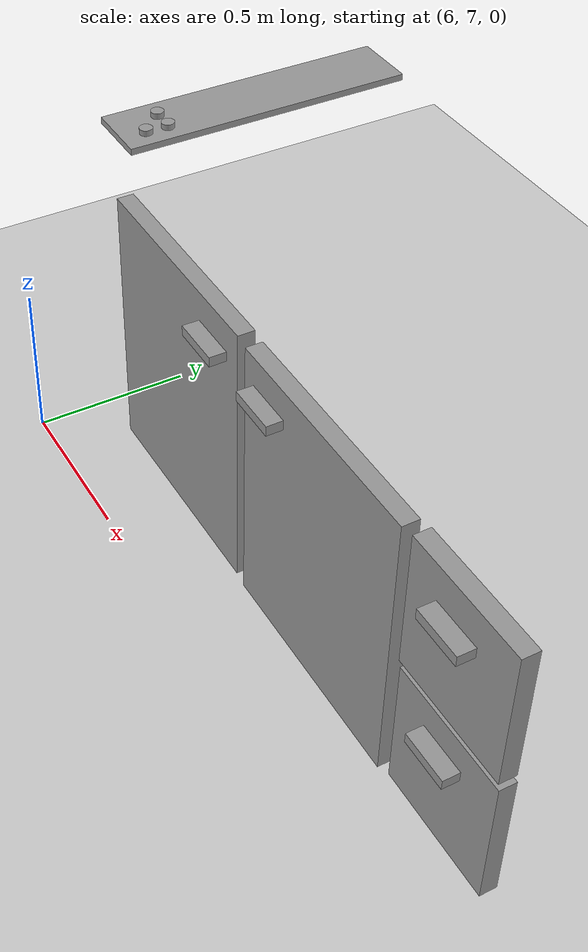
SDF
<sdf version="1.6">
 <world name="default">
  <model name="ground_plane">
   <static>1</static>
   <link name="link">
    <collision name="collision">
     <geometry><plane><normal>0 0 1</normal><size>100 100</size></plane></geometry>
     <surface>
      <contact><collide_bitmask>65535</collide_bitmask></contact>
      <friction><ode><mu>100</mu><mu2>50</mu2></ode></friction>
     </surface>
    </collision>
    <visual name="visual">
     <cast_shadows>0</cast_shadows>
     <geometry><plane><normal>0 0 1</normal><size>100 100</size></plane></geometry>
     <material>
      <script><uri>file://media/materials/scripts/gazebo.material</uri><name>Gazebo/Grey</name></script>
     </material>
    </visual>
   </link>
  </model>
  <model name="my_kitchen">
   <link name="link_0_0_clone_clone_clone_clone">
    <inertial>
     <mass>1</mass>
     <inertia><ixx>0.145833</ixx><ixy>0</ixy><ixz>0</ixz><iyy>0.145833</iyy><iyz>0</iyz><izz>0.125</izz></inertia>
    </inertial>
    <pose>1.86316 -0.307981 1.03286 0 -0 0</pose>
    <visual name="visual">
     <geometry><cylinder><radius>0.02</radius><length>0.03</length></cylinder></geometry>
     <material>
      <lighting>1</lighting>
      <script><uri>file://media/materials/scripts/gazebo.material</uri><name>Gazebo/Grey</name></script>
      <shader type="pixel"><normal_map>__default__</normal_map></shader>
      <ambient>0.6 0.6 0.6 1</ambient>
      <diffuse>0.6 0.6 0.6 1</diffuse>
      <specular>0.01 0.01 0.01 1</specular>
      <emissive>0 0 0 1</emissive>
     </material>
    </visual>
    <collision name="collision">
     <geometry><cylinder><radius>0.02</radius><length>0.03</length></cylinder></geometry>
     <surface>
      <friction>
       <ode><mu>1</mu><mu2>1</mu2><fdir1>0 0 0</fdir1><slip1>0</slip1><slip2>0</slip2></ode>
       <torsional>
        <coefficient>1</coefficient>
        <patch_radius>0</patch_radius>
        <surface_radius>0</surface_radius>
        <use_patch_radius>1</use_patch_radius>
        <ode><slip>0</slip></ode>
       </torsional>
      </friction>
      <bounce><restitution_coefficient>0</restitution_coefficient><threshold>1e+06</threshold></bounce>
      <contact>
       <collide_without_contact>0</collide_without_contact>
       <collide_without_contact_bitmask>1</collide_without_contact_bitmask>
       <collide_bitmask>1</collide_bitmask>
       <ode>
        <soft_cfm>0</soft_cfm>
        <soft_erp>0.2</soft_erp>
        <kp>1e+13</kp>
        <kd>1</kd>
        <max_vel>0.01</max_vel>
        <min_depth>0</min_depth>
       </ode>
       <bullet>
        <split_impulse>1</split_impulse>
        <split_impulse_penetration_threshold>-0.01</split_impulse_penetration_threshold>
        <soft_cfm>0</soft_cfm>
        <soft_erp>0.2</soft_erp>
        <kp>1e+13</kp>
        <kd>1</kd>
       </bullet>
      </contact>
     </surface>
    </collision>
   </link>
   <link name="link_0_0_clone_clone_clone_clone_clone">
    <inertial>
     <mass>1</mass>
     <inertia><ixx>0.145833</ixx><ixy>0</ixy><ixz>0</ixz><iyy>0.145833</iyy><iyz>0</iyz><izz>0.125</izz></inertia>
    </inertial>
    <pose>1.93281 -0.308649 1.03286 0 -0 0</pose>
    <visual name="visual">
     <geometry><cylinder><radius>0.02</radius><length>0.03</length></cylinder></geometry>
     <material>
      <lighting>1</lighting>
      <script><uri>file://media/materials/scripts/gazebo.material</uri><name>Gazebo/Grey</name></script>
      <shader type="pixel"><normal_map>__default__</normal_map></shader>
      <ambient>0.6 0.6 0.6 1</ambient>
      <diffuse>0.6 0.6 0.6 1</diffuse>
      <specular>0.01 0.01 0.01 1</specular>
      <emissive>0 0 0 1</emissive>
     </material>
    </visual>
    <collision name="collision">
     <geometry><cylinder><radius>0.02</radius><length>0.03</length></cylinder></geometry>
     <surface>
      <friction>
       <ode><mu>1</mu><mu2>1</mu2><fdir1>0 0 0</fdir1><slip1>0</slip1><slip2>0</slip2></ode>
       <torsional>
        <coefficient>1</coefficient>
        <patch_radius>0</patch_radius>
        <surface_radius>0</surface_radius>
        <use_patch_radius>1</use_patch_radius>
        <ode><slip>0</slip></ode>
       </torsional>
      </friction>
      <bounce><restitution_coefficient>0</restitution_coefficient><threshold>1e+06</threshold></bounce>
      <contact>
       <collide_without_contact>0</collide_without_contact>
       <collide_without_contact_bitmask>1</collide_without_contact_bitmask>
       <collide_bitmask>1</collide_bitmask>
       <ode>
        <soft_cfm>0</soft_cfm>
        <soft_erp>0.2</soft_erp>
        <kp>1e+13</kp>
        <kd>1</kd>
        <max_vel>0.01</max_vel>
        <min_depth>0</min_depth>
       </ode>
       <bullet>
        <split_impulse>1</split_impulse>
        <split_impulse_penetration_threshold>-0.01</split_impulse_penetration_threshold>
        <soft_cfm>0</soft_cfm>
        <soft_erp>0.2</soft_erp>
        <kp>1e+13</kp>
        <kd>1</kd>
       </bullet>
      </contact>
     </surface>
    </collision>
   </link>
   <link name="link_0_0_clone_clone_clone_clone_clone_clone_clone">
    <inertial>
     <mass>1</mass>
     <inertia><ixx>0.145833</ixx><ixy>0</ixy><ixz>0</ixz><iyy>0.145833</iyy><iyz>0</iyz><izz>0.125</izz></inertia>
    </inertial>
    <pose>1.93241 -0.377735 1.03286 0 -0 0</pose>
    <visual name="visual">
     <geometry><cylinder><radius>0.02</radius><length>0.03</length></cylinder></geometry>
     <material>
      <lighting>1</lighting>
      <script><uri>file://media/materials/scripts/gazebo.material</uri><name>Gazebo/Grey</name></script>
      <shader type="pixel"><normal_map>__default__</normal_map></shader>
      <ambient>0.6 0.6 0.6 1</ambient>
      <diffuse>0.6 0.6 0.6 1</diffuse>
      <specular>0.01 0.01 0.01 1</specular>
      <emissive>0 0 0 1</emissive>
     </material>
    </visual>
    <collision name="collision">
     <geometry><cylinder><radius>0.02</radius><length>0.03</length></cylinder></geometry>
     <surface>
      <friction>
       <ode><mu>1</mu><mu2>1</mu2><fdir1>0 0 0</fdir1><slip1>0</slip1><slip2>0</slip2></ode>
       <torsional>
        <coefficient>1</coefficient>
        <patch_radius>0</patch_radius>
        <surface_radius>0</surface_radius>
        <use_patch_radius>1</use_patch_radius>
        <ode><slip>0</slip></ode>
       </torsional>
      </friction>
      <bounce><restitution_coefficient>0</restitution_coefficient><threshold>1e+06</threshold></bounce>
      <contact>
       <collide_without_contact>0</collide_without_contact>
       <collide_without_contact_bitmask>1</collide_without_contact_bitmask>
       <collide_bitmask>1</collide_bitmask>
       <ode>
        <soft_cfm>0</soft_cfm>
        <soft_erp>0.2</soft_erp>
        <kp>1e+13</kp>
        <kd>1</kd>
        <max_vel>0.01</max_vel>
        <min_depth>0</min_depth>
       </ode>
       <bullet>
        <split_impulse>1</split_impulse>
        <split_impulse_penetration_threshold>-0.01</split_impulse_penetration_threshold>
        <soft_cfm>0</soft_cfm>
        <soft_erp>0.2</soft_erp>
        <kp>1e+13</kp>
        <kd>1</kd>
       </bullet>
      </contact>
     </surface>
    </collision>
   </link>
   <link name="link_clone_0_clone">
    <inertial>
     <mass>1</mass>
     <inertia>
      <ixx>0.166667</ixx>
      <ixy>0</ixy>
      <ixz>0</ixz>
      <iyy>0.166667</iyy>
      <iyz>0</iyz>
      <izz>0.166667</izz>
     </inertia>
    </inertial>
    <pose>1.89193 -0.003715 0.520133 0 -0 0</pose>
    <gravity>0</gravity>
    <visual name="visual">
     <geometry><box><size>0.2 0.9 0.02</size></box></geometry>
     <material>
      <script><name>Gazebo/Grey</name><uri>file://media/materials/scripts/gazebo.material</uri></script>
      <shader type="pixel"><normal_map>__default__</normal_map></shader>
      <ambient>0.4 0.4 0.4 1</ambient>
      <diffuse>0.4 0.4 0.4 1</diffuse>
      <specular>0.01 0.01 0.01 1</specular>
      <emissive>0 0 0 1</emissive>
     </material>
     <pose>0 0 0.5 0 -0 0</pose>
    </visual>
    <collision name="collision">
     <pose>0 0 0.5 0 -0 0</pose>
     <geometry><box><size>0.2 0.9 0.02</size></box></geometry>
     <surface>
      <friction>
       <ode><mu>1</mu><mu2>1</mu2><fdir1>0 0 0</fdir1><slip1>0</slip1><slip2>0</slip2></ode>
       <torsional>
        <coefficient>1</coefficient>
        <patch_radius>0</patch_radius>
        <surface_radius>0</surface_radius>
        <use_patch_radius>1</use_patch_radius>
        <ode><slip>0</slip></ode>
       </torsional>
      </friction>
      <bounce><restitution_coefficient>0</restitution_coefficient><threshold>1e+06</threshold></bounce>
      <contact>
       <collide_without_contact>0</collide_without_contact>
       <collide_without_contact_bitmask>1</collide_without_contact_bitmask>
       <collide_bitmask>1</collide_bitmask>
       <ode>
        <soft_cfm>0</soft_cfm>
        <soft_erp>0.2</soft_erp>
        <kp>1e+13</kp>
        <kd>1</kd>
        <max_vel>0.01</max_vel>
        <min_depth>0</min_depth>
       </ode>
       <bullet>
        <split_impulse>1</split_impulse>
        <split_impulse_penetration_threshold>-0.01</split_impulse_penetration_threshold>
        <soft_cfm>0</soft_cfm>
        <soft_erp>0.2</soft_erp>
        <kp>1e+13</kp>
        <kd>1</kd>
       </bullet>
      </contact>
     </surface>
    </collision>
   </link>
   <link name="link_clone_clone_clone_0_clone_clone_clone_0_clone_clone">
    <inertial>
     <mass>1</mass>
     <inertia>
      <ixx>0.166667</ixx>
      <ixy>0</ixy>
      <ixz>0</ixz>
      <iyy>0.166667</iyy>
      <iyz>0</iyz>
      <izz>0.166667</izz>
     </inertia>
    </inertial>
    <pose>3.17153 -0.519787 0.016041 0 -0 0</pose>
    <gravity>0</gravity>
    <visual name="visual">
     <geometry><box><size>0.05 0.7 0.85</size></box></geometry>
     <material>
      <script><name>Gazebo/Grey</name><uri>file://media/materials/scripts/gazebo.material</uri></script>
      <shader type="pixel"><normal_map>__default__</normal_map></shader>
      <ambient>0.4 0.4 0.4 1</ambient>
      <diffuse>0.4 0.4 0.4 1</diffuse>
      <specular>0.01 0.01 0.01 1</specular>
      <emissive>0 0 0 1</emissive>
     </material>
     <pose>0 0 0.5 0 -0 1.5707</pose>
    </visual>
    <collision name="collision">
     <pose>0 0 0.5 0 -0 1.5707</pose>
     <geometry><box><size>0.05 0.7 0.85</size></box></geometry>
     <surface>
      <friction>
       <ode><mu>1</mu><mu2>1</mu2><fdir1>0 0 0</fdir1><slip1>0</slip1><slip2>0</slip2></ode>
       <torsional>
        <coefficient>1</coefficient>
        <patch_radius>0</patch_radius>
        <surface_radius>0</surface_radius>
        <use_patch_radius>1</use_patch_radius>
        <ode><slip>0</slip></ode>
       </torsional>
      </friction>
      <bounce><restitution_coefficient>0</restitution_coefficient><threshold>1e+06</threshold></bounce>
      <contact>
       <collide_without_contact>0</collide_without_contact>
       <collide_without_contact_bitmask>1</collide_without_contact_bitmask>
       <collide_bitmask>1</collide_bitmask>
       <ode>
        <soft_cfm>0</soft_cfm>
        <soft_erp>0.2</soft_erp>
        <kp>1e+13</kp>
        <kd>1</kd>
        <max_vel>0.01</max_vel>
        <min_depth>0</min_depth>
       </ode>
       <bullet>
        <split_impulse>1</split_impulse>
        <split_impulse_penetration_threshold>-0.01</split_impulse_penetration_threshold>
        <soft_cfm>0</soft_cfm>
        <soft_erp>0.2</soft_erp>
        <kp>1e+13</kp>
        <kd>1</kd>
       </bullet>
      </contact>
     </surface>
    </collision>
   </link>
   <link name="link_clone_clone_clone_0_clone_clone_clone_0_clone_clone_clone">
    <inertial>
     <mass>1</mass>
     <inertia>
      <ixx>0.166667</ixx>
      <ixy>0</ixy>
      <ixz>0</ixz>
      <iyy>0.166667</iyy>
      <iyz>0</iyz>
      <izz>0.166667</izz>
     </inertia>
    </inertial>
    <pose>2.42242 -0.51406 0.016041 0 -0 0</pose>
    <gravity>0</gravity>
    <visual name="visual">
     <geometry><box><size>0.05 0.7 0.85</size></box></geometry>
     <material>
      <script><name>Gazebo/Grey</name><uri>file://media/materials/scripts/gazebo.material</uri></script>
      <shader type="pixel"><normal_map>__default__</normal_map></shader>
      <ambient>0.4 0.4 0.4 1</ambient>
      <diffuse>0.4 0.4 0.4 1</diffuse>
      <specular>0.01 0.01 0.01 1</specular>
      <emissive>0 0 0 1</emissive>
     </material>
     <pose>0 0 0.5 0 -0 1.5707</pose>
    </visual>
    <collision name="collision">
     <pose>0 0 0.5 0 -0 1.5707</pose>
     <geometry><box><size>0.05 0.7 0.85</size></box></geometry>
     <surface>
      <friction>
       <ode><mu>1</mu><mu2>1</mu2><fdir1>0 0 0</fdir1><slip1>0</slip1><slip2>0</slip2></ode>
       <torsional>
        <coefficient>1</coefficient>
        <patch_radius>0</patch_radius>
        <surface_radius>0</surface_radius>
        <use_patch_radius>1</use_patch_radius>
        <ode><slip>0</slip></ode>
       </torsional>
      </friction>
      <bounce><restitution_coefficient>0</restitution_coefficient><threshold>1e+06</threshold></bounce>
      <contact>
       <collide_without_contact>0</collide_without_contact>
       <collide_without_contact_bitmask>1</collide_without_contact_bitmask>
       <collide_bitmask>1</collide_bitmask>
       <ode>
        <soft_cfm>0</soft_cfm>
        <soft_erp>0.2</soft_erp>
        <kp>1e+13</kp>
        <kd>1</kd>
        <max_vel>0.01</max_vel>
        <min_depth>0</min_depth>
       </ode>
       <bullet>
        <split_impulse>1</split_impulse>
        <split_impulse_penetration_threshold>-0.01</split_impulse_penetration_threshold>
        <soft_cfm>0</soft_cfm>
        <soft_erp>0.2</soft_erp>
        <kp>1e+13</kp>
        <kd>1</kd>
       </bullet>
      </contact>
     </surface>
    </collision>
   </link>
   <link name="link_clone_clone_clone_0_clone_clone_clone_0_clone_clone_clone_0">
    <inertial>
     <mass>1</mass>
     <inertia>
      <ixx>0.166667</ixx>
      <ixy>0</ixy>
      <ixz>0</ixz>
      <iyy>0.166667</iyy>
      <iyz>0</iyz>
      <izz>0.166667</izz>
     </inertia>
    </inertial>
    <pose>3.74896 -0.513318 0.237061 0 -0 0</pose>
    <gravity>0</gravity>
    <visual name="visual">
     <geometry><box><size>0.05 0.39 0.41</size></box></geometry>
     <material>
      <script><name>Gazebo/Grey</name><uri>file://media/materials/scripts/gazebo.material</uri></script>
      <shader type="pixel"><normal_map>__default__</normal_map></shader>
      <ambient>0.4 0.4 0.4 1</ambient>
      <diffuse>0.4 0.4 0.4 1</diffuse>
      <specular>0.01 0.01 0.01 1</specular>
      <emissive>0 0 0 1</emissive>
     </material>
     <pose>0 0 0.5 0 -0 1.5707</pose>
    </visual>
    <collision name="collision">
     <pose>0 0 0.5 0 -0 1.5707</pose>
     <geometry><box><size>0.05 0.39 0.41</size></box></geometry>
     <surface>
      <friction>
       <ode><mu>1</mu><mu2>1</mu2><fdir1>0 0 0</fdir1><slip1>0</slip1><slip2>0</slip2></ode>
       <torsional>
        <coefficient>1</coefficient>
        <patch_radius>0</patch_radius>
        <surface_radius>0</surface_radius>
        <use_patch_radius>1</use_patch_radius>
        <ode><slip>0</slip></ode>
       </torsional>
      </friction>
      <bounce><restitution_coefficient>0</restitution_coefficient><threshold>1e+06</threshold></bounce>
      <contact>
       <collide_without_contact>0</collide_without_contact>
       <collide_without_contact_bitmask>1</collide_without_contact_bitmask>
       <collide_bitmask>1</collide_bitmask>
       <ode>
        <soft_cfm>0</soft_cfm>
        <soft_erp>0.2</soft_erp>
        <kp>1e+13</kp>
        <kd>1</kd>
        <max_vel>0.01</max_vel>
        <min_depth>0</min_depth>
       </ode>
       <bullet>
        <split_impulse>1</split_impulse>
        <split_impulse_penetration_threshold>-0.01</split_impulse_penetration_threshold>
        <soft_cfm>0</soft_cfm>
        <soft_erp>0.2</soft_erp>
        <kp>1e+13</kp>
        <kd>1</kd>
       </bullet>
      </contact>
     </surface>
    </collision>
   </link>
   <link name="link_clone_clone_clone_0_clone_clone_clone_0_clone_clone_clone_0_clone">
    <inertial>
     <mass>1</mass>
     <inertia>
      <ixx>0.166667</ixx>
      <ixy>0</ixy>
      <ixz>0</ixz>
      <iyy>0.166667</iyy>
      <iyz>0</iyz>
      <izz>0.166667</izz>
     </inertia>
    </inertial>
    <pose>3.74748 -0.506678 -0.203025 0 -0 0</pose>
    <visual name="visual">
     <geometry><box><size>0.05 0.39 0.41</size></box></geometry>
     <material>
      <script><name>Gazebo/Grey</name><uri>file://media/materials/scripts/gazebo.material</uri></script>
      <shader type="pixel"><normal_map>__default__</normal_map></shader>
      <ambient>0.4 0.4 0.4 1</ambient>
      <diffuse>0.4 0.4 0.4 1</diffuse>
      <specular>0.01 0.01 0.01 1</specular>
      <emissive>0 0 0 1</emissive>
     </material>
     <pose>0 0 0.5 0 -0 1.5707</pose>
    </visual>
    <collision name="collision">
     <pose>0 0 0.5 0 -0 1.5707</pose>
     <geometry><box><size>0.05 0.39 0.41</size></box></geometry>
     <surface>
      <friction>
       <ode><mu>1</mu><mu2>1</mu2><fdir1>0 0 0</fdir1><slip1>0</slip1><slip2>0</slip2></ode>
       <torsional>
        <coefficient>1</coefficient>
        <patch_radius>0</patch_radius>
        <surface_radius>0</surface_radius>
        <use_patch_radius>1</use_patch_radius>
        <ode><slip>0</slip></ode>
       </torsional>
      </friction>
      <bounce><restitution_coefficient>0</restitution_coefficient><threshold>1e+06</threshold></bounce>
      <contact>
       <collide_without_contact>0</collide_without_contact>
       <collide_without_contact_bitmask>1</collide_without_contact_bitmask>
       <collide_bitmask>1</collide_bitmask>
       <ode>
        <soft_cfm>0</soft_cfm>
        <soft_erp>0.2</soft_erp>
        <kp>1e+13</kp>
        <kd>1</kd>
        <max_vel>0.01</max_vel>
        <min_depth>0</min_depth>
       </ode>
       <bullet>
        <split_impulse>1</split_impulse>
        <split_impulse_penetration_threshold>-0.01</split_impulse_penetration_threshold>
        <soft_cfm>0</soft_cfm>
        <soft_erp>0.2</soft_erp>
        <kp>1e+13</kp>
        <kd>1</kd>
       </bullet>
      </contact>
     </surface>
    </collision>
   </link>
   <link name="link_clone_clone_clone_0_clone_clone_clone_clone_1">
    <inertial>
     <mass>1</mass>
     <inertia>
      <ixx>0.166667</ixx>
      <ixy>0</ixy>
      <ixz>0</ixz>
      <iyy>0.166667</iyy>
      <iyz>0</iyz>
      <izz>0.166667</izz>
     </inertia>
    </inertial>
    <pose>2.64241 -0.56602 0.338029 0 -0 0</pose>
    <gravity>0</gravity>
    <visual name="visual">
     <geometry><box><size>0.05 0.15 0.03</size></box></geometry>
     <material>
      <script><name>Gazebo/Grey</name><uri>file://media/materials/scripts/gazebo.material</uri></script>
      <shader type="pixel"><normal_map>__default__</normal_map></shader>
      <ambient>0.9 0.9 0.9 1</ambient>
      <diffuse>0.8 0.8 0.8 1</diffuse>
      <specular>0.01 0.01 0.01 1</specular>
      <emissive>0 0 0 1</emissive>
     </material>
     <pose>0 0 0.5 0 -0 1.5707</pose>
    </visual>
    <collision name="collision">
     <pose>0 0 0.5 0 -0 1.5707</pose>
     <geometry><box><size>0.05 0.15 0.03</size></box></geometry>
     <surface>
      <friction>
       <ode><mu>1</mu><mu2>1</mu2><fdir1>0 0 0</fdir1><slip1>0</slip1><slip2>0</slip2></ode>
       <torsional>
        <coefficient>1</coefficient>
        <patch_radius>0</patch_radius>
        <surface_radius>0</surface_radius>
        <use_patch_radius>1</use_patch_radius>
        <ode><slip>0</slip></ode>
       </torsional>
      </friction>
      <bounce><restitution_coefficient>0</restitution_coefficient><threshold>1e+06</threshold></bounce>
      <contact>
       <collide_without_contact>0</collide_without_contact>
       <collide_without_contact_bitmask>1</collide_without_contact_bitmask>
       <collide_bitmask>1</collide_bitmask>
       <ode>
        <soft_cfm>0</soft_cfm>
        <soft_erp>0.2</soft_erp>
        <kp>1e+13</kp>
        <kd>1</kd>
        <max_vel>0.01</max_vel>
        <min_depth>0</min_depth>
       </ode>
       <bullet>
        <split_impulse>1</split_impulse>
        <split_impulse_penetration_threshold>-0.01</split_impulse_penetration_threshold>
        <soft_cfm>0</soft_cfm>
        <soft_erp>0.2</soft_erp>
        <kp>1e+13</kp>
        <kd>1</kd>
       </bullet>
      </contact>
     </surface>
    </collision>
   </link>
   <link name="link_clone_clone_clone_0_clone_clone_clone_clone_1_clone">
    <inertial>
     <mass>1</mass>
     <inertia>
      <ixx>0.166667</ixx>
      <ixy>0</ixy>
      <ixz>0</ixz>
      <iyy>0.166667</iyy>
      <iyz>0</iyz>
      <izz>0.166667</izz>
     </inertia>
    </inertial>
    <pose>3.74642 -0.563139 -0.08913 0 -0 0</pose>
    <gravity>0</gravity>
    <visual name="visual">
     <geometry><box><size>0.05 0.15 0.03</size></box></geometry>
     <material>
      <script><name>Gazebo/Grey</name><uri>file://media/materials/scripts/gazebo.material</uri></script>
      <shader type="pixel"><normal_map>__default__</normal_map></shader>
      <ambient>0.9 0.9 0.9 1</ambient>
      <diffuse>0.8 0.8 0.8 1</diffuse>
      <specular>0.01 0.01 0.01 1</specular>
      <emissive>0 0 0 1</emissive>
     </material>
     <pose>0 0 0.5 0 -0 1.5707</pose>
    </visual>
    <collision name="collision">
     <pose>0 0 0.5 0 -0 1.5707</pose>
     <geometry><box><size>0.05 0.15 0.03</size></box></geometry>
     <surface>
      <friction>
       <ode><mu>1</mu><mu2>1</mu2><fdir1>0 0 0</fdir1><slip1>0</slip1><slip2>0</slip2></ode>
       <torsional>
        <coefficient>1</coefficient>
        <patch_radius>0</patch_radius>
        <surface_radius>0</surface_radius>
        <use_patch_radius>1</use_patch_radius>
        <ode><slip>0</slip></ode>
       </torsional>
      </friction>
      <bounce><restitution_coefficient>0</restitution_coefficient><threshold>1e+06</threshold></bounce>
      <contact>
       <collide_without_contact>0</collide_without_contact>
       <collide_without_contact_bitmask>1</collide_without_contact_bitmask>
       <collide_bitmask>1</collide_bitmask>
       <ode>
        <soft_cfm>0</soft_cfm>
        <soft_erp>0.2</soft_erp>
        <kp>1e+13</kp>
        <kd>1</kd>
        <max_vel>0.01</max_vel>
        <min_depth>0</min_depth>
       </ode>
       <bullet>
        <split_impulse>1</split_impulse>
        <split_impulse_penetration_threshold>-0.01</split_impulse_penetration_threshold>
        <soft_cfm>0</soft_cfm>
        <soft_erp>0.2</soft_erp>
        <kp>1e+13</kp>
        <kd>1</kd>
       </bullet>
      </contact>
     </surface>
    </collision>
   </link>
   <link name="link_clone_clone_clone_0_clone_clone_clone_clone_1_clone_clone">
    <inertial>
     <mass>1</mass>
     <inertia>
      <ixx>0.166667</ixx>
      <ixy>0</ixy>
      <ixz>0</ixz>
      <iyy>0.166667</iyy>
      <iyz>0</iyz>
      <izz>0.166667</izz>
     </inertia>
    </inertial>
    <pose>2.93965 -0.568069 0.338029 0 -0 0</pose>
    <gravity>0</gravity>
    <visual name="visual">
     <geometry><box><size>0.05 0.15 0.03</size></box></geometry>
     <material>
      <script><name>Gazebo/Grey</name><uri>file://media/materials/scripts/gazebo.material</uri></script>
      <shader type="pixel"><normal_map>__default__</normal_map></shader>
      <ambient>0.9 0.9 0.9 1</ambient>
      <diffuse>0.8 0.8 0.8 1</diffuse>
      <specular>0.01 0.01 0.01 1</specular>
      <emissive>0 0 0 1</emissive>
     </material>
     <pose>0 0 0.5 0 -0 1.5707</pose>
    </visual>
    <collision name="collision">
     <pose>0 0 0.5 0 -0 1.5707</pose>
     <geometry><box><size>0.05 0.15 0.03</size></box></geometry>
     <surface>
      <friction>
       <ode><mu>1</mu><mu2>1</mu2><fdir1>0 0 0</fdir1><slip1>0</slip1><slip2>0</slip2></ode>
       <torsional>
        <coefficient>1</coefficient>
        <patch_radius>0</patch_radius>
        <surface_radius>0</surface_radius>
        <use_patch_radius>1</use_patch_radius>
        <ode><slip>0</slip></ode>
       </torsional>
      </friction>
      <bounce><restitution_coefficient>0</restitution_coefficient><threshold>1e+06</threshold></bounce>
      <contact>
       <collide_without_contact>0</collide_without_contact>
       <collide_without_contact_bitmask>1</collide_without_contact_bitmask>
       <collide_bitmask>1</collide_bitmask>
       <ode>
        <soft_cfm>0</soft_cfm>
        <soft_erp>0.2</soft_erp>
        <kp>1e+13</kp>
        <kd>1</kd>
        <max_vel>0.01</max_vel>
        <min_depth>0</min_depth>
       </ode>
       <bullet>
        <split_impulse>1</split_impulse>
        <split_impulse_penetration_threshold>-0.01</split_impulse_penetration_threshold>
        <soft_cfm>0</soft_cfm>
        <soft_erp>0.2</soft_erp>
        <kp>1e+13</kp>
        <kd>1</kd>
       </bullet>
      </contact>
     </surface>
    </collision>
   </link>
   <link name="link_clone_clone_clone_0_clone_clone_clone_clone_1_clone_clone_0">
    <inertial>
     <mass>1</mass>
     <inertia>
      <ixx>0.166667</ixx>
      <ixy>0</ixy>
      <ixz>0</ixz>
      <iyy>0.166667</iyy>
      <iyz>0</iyz>
      <izz>0.166667</izz>
     </inertia>
    </inertial>
    <pose>3.74718 -0.573286 0.341646 0 -0 0</pose>
    <gravity>0</gravity>
    <visual name="visual">
     <geometry><box><size>0.05 0.15 0.03</size></box></geometry>
     <material>
      <script><name>Gazebo/Grey</name><uri>file://media/materials/scripts/gazebo.material</uri></script>
      <shader type="pixel"><normal_map>__default__</normal_map></shader>
      <ambient>0.9 0.9 0.9 1</ambient>
      <diffuse>0.8 0.8 0.8 1</diffuse>
      <specular>0.01 0.01 0.01 1</specular>
      <emissive>0 0 0 1</emissive>
     </material>
     <pose>0 0 0.5 0 -0 1.5707</pose>
    </visual>
    <collision name="collision">
     <pose>0 0 0.5 0 -0 1.5707</pose>
     <geometry><box><size>0.05 0.15 0.03</size></box></geometry>
     <surface>
      <friction>
       <ode><mu>1</mu><mu2>1</mu2><fdir1>0 0 0</fdir1><slip1>0</slip1><slip2>0</slip2></ode>
       <torsional>
        <coefficient>1</coefficient>
        <patch_radius>0</patch_radius>
        <surface_radius>0</surface_radius>
        <use_patch_radius>1</use_patch_radius>
        <ode><slip>0</slip></ode>
       </torsional>
      </friction>
      <bounce><restitution_coefficient>0</restitution_coefficient><threshold>1e+06</threshold></bounce>
      <contact>
       <collide_without_contact>0</collide_without_contact>
       <collide_without_contact_bitmask>1</collide_without_contact_bitmask>
       <collide_bitmask>1</collide_bitmask>
       <ode>
        <soft_cfm>0</soft_cfm>
        <soft_erp>0.2</soft_erp>
        <kp>1e+13</kp>
        <kd>1</kd>
        <max_vel>0.01</max_vel>
        <min_depth>0</min_depth>
       </ode>
       <bullet>
        <split_impulse>1</split_impulse>
        <split_impulse_penetration_threshold>-0.01</split_impulse_penetration_threshold>
        <soft_cfm>0</soft_cfm>
        <soft_erp>0.2</soft_erp>
        <kp>1e+13</kp>
        <kd>1</kd>
       </bullet>
      </contact>
     </surface>
    </collision>
   </link>
   <static>1</static>
   <pose>4.18115 7.73532 0 0 -0 0</pose>
  </model>
 </world>
</sdf>
